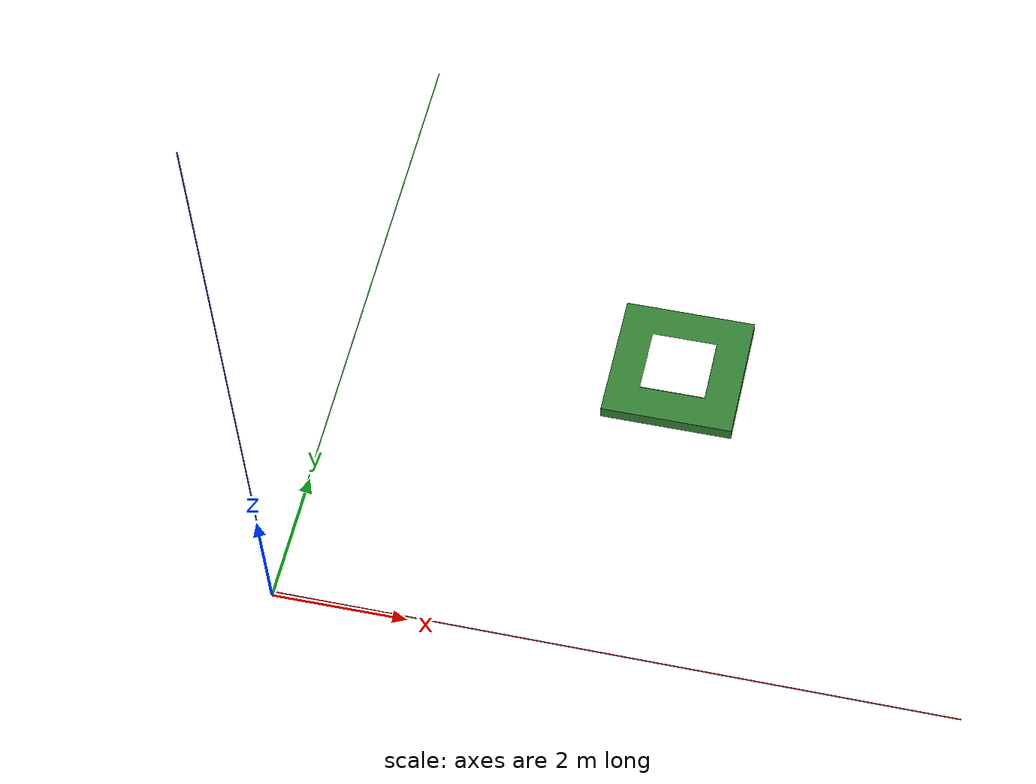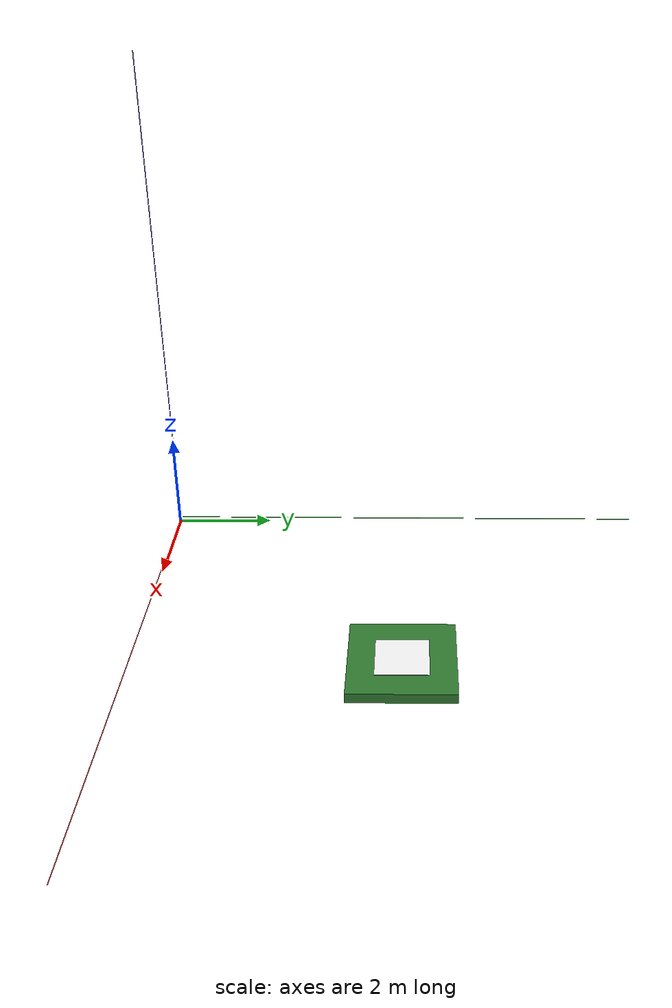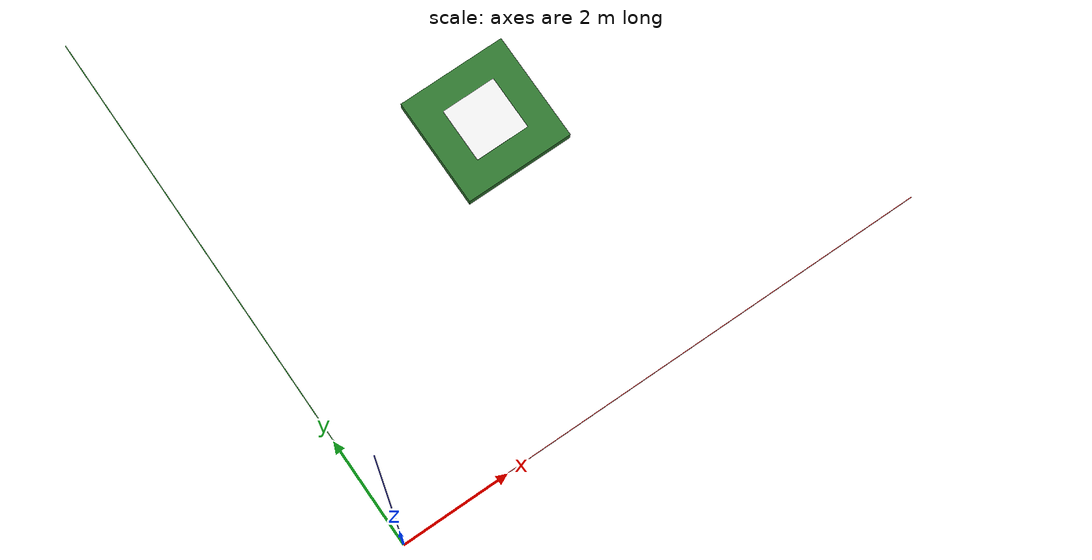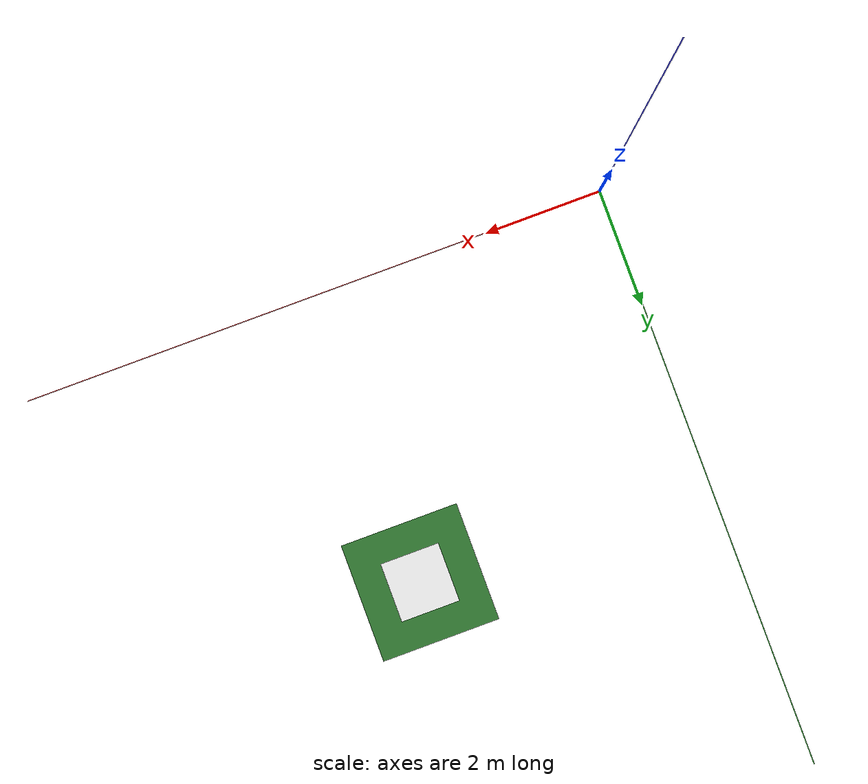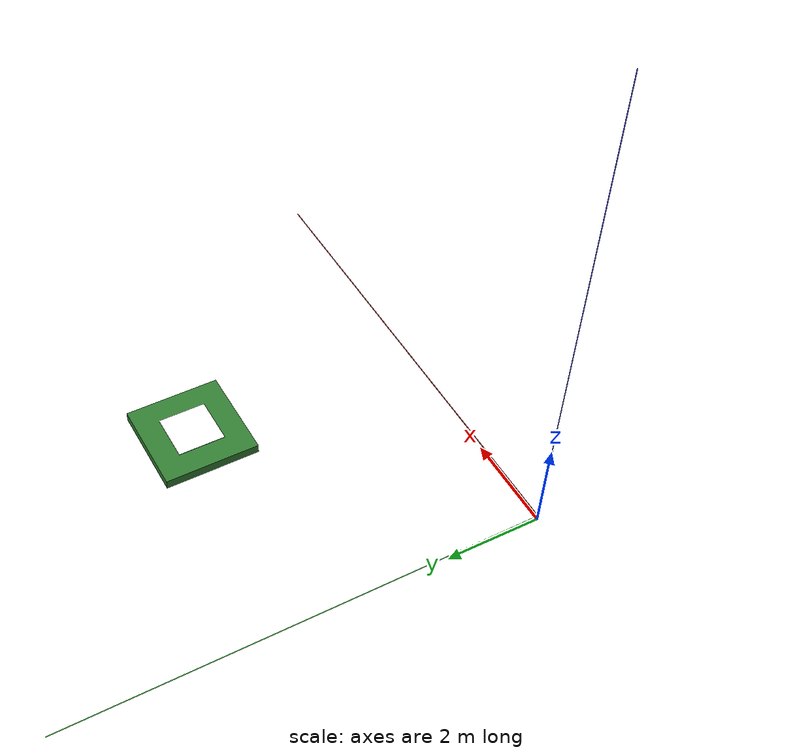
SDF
<sdf version="1.9">
 <world name="iris_runway">
  <physics name="1ms" type="ignore">
   <max_step_size>0.001</max_step_size>
   <real_time_factor>1.0</real_time_factor>
  </physics>
  <plugin filename="gz-sim-physics-system" name="gz::sim::systems::Physics"/>
  <plugin filename="gz-sim-sensors-system" name="gz::sim::systems::Sensors">
   <render_engine>ogre2</render_engine>
  </plugin>
  <plugin filename="gz-sim-user-commands-system" name="gz::sim::systems::UserCommands"/>
  <plugin filename="gz-sim-scene-broadcaster-system" name="gz::sim::systems::SceneBroadcaster"/>
  <plugin filename="gz-sim-imu-system" name="gz::sim::systems::Imu"/>
  <plugin filename="gz-sim-navsat-system" name="gz::sim::systems::NavSat"/>
  <scene><ambient>1.0 1.0 1.0</ambient><background>0.8 0.8 0.8</background></scene>
  <spherical_coordinates>
   <latitude_deg>-35.363262</latitude_deg>
   <longitude_deg>149.165237</longitude_deg>
   <elevation>584</elevation>
   <heading_deg>0</heading_deg>
   <surface_model>EARTH_WGS84</surface_model>
  </spherical_coordinates>
  <light type="directional" name="sun">
   <pose>0 0 10 0 0 0</pose>
   <diffuse>0.8 0.8 0.8 1</diffuse>
   <specular>0.8 0.8 0.8 1</specular>
   <attenuation>
    <range>1000</range>
    <constant>0.9</constant>
    <linear>0.01</linear>
    <quadratic>0.001</quadratic>
   </attenuation>
   <direction>-0.5 0.1 -0.9</direction>
  </light>
  <model name="axes">
   <static>1</static>
   <link name="link">
    <visual name="r">
     <cast_shadows>0</cast_shadows>
     <pose>5 0 0.1 0 0 0</pose>
     <geometry><box><size>10 0.01 0.01</size></box></geometry>
     <material>
      <ambient>1 0 0 0.8</ambient>
      <diffuse>1 0 0 0.8</diffuse>
      <emissive>1 0 0 0.8</emissive>
      <specular>0.5 0.5 0.5 0.8</specular>
     </material>
    </visual>
    <visual name="g">
     <cast_shadows>0</cast_shadows>
     <pose>0 5 0.1 0 0 0</pose>
     <geometry><box><size>0.01 10 0.01</size></box></geometry>
     <material>
      <ambient>0 1 0 0.8</ambient>
      <diffuse>0 1 0 0.8</diffuse>
      <emissive>0 1 0 0.8</emissive>
      <specular>0.5 0.5 0.5 0.8</specular>
     </material>
    </visual>
    <visual name="b">
     <cast_shadows>0</cast_shadows>
     <pose>0 0 5.1 0 0 0</pose>
     <geometry><box><size>0.01 0.01 10</size></box></geometry>
     <material>
      <ambient>0 0 1 0.8</ambient>
      <diffuse>0 0 1 0.8</diffuse>
      <emissive>0 0 1 0.8</emissive>
      <specular>0.5 0.5 0.5 0.8</specular>
     </material>
    </visual>
    <sensor name="navsat_sensor" type="navsat"><always_on>1</always_on><update_rate>1</update_rate></sensor>
   </link>
  </model>
  <model name="landing_platform">
   <pose>5 5 0.1 0 0 0</pose>
   <link name="base_link">
    <kinematic>true</kinematic>
    <collision name="collision"><geometry><box><size>2 2 0.2</size></box></geometry></collision>
    <visual name="visual">
     <geometry><box><size>2 2 0.2</size></box></geometry>
     <material><ambient>0.2 0.5 0.2 1</ambient><diffuse>0.2 0.5 0.2 1</diffuse></material>
    </visual>
    <visual name="marker_visual">
     <pose>0 0 0.11 0 0 0</pose>
     <geometry><box><size>1.0 1.0 0.01</size></box></geometry>
     <material>
      <diffuse>1 1 1 1</diffuse>
      <pbr><metal><albedo_map>model://iris_with_aruco/materials/textures/marker.png</albedo_map></metal></pbr>
     </material>
    </visual>
   </link>
   <plugin filename="gz-sim-trajectory-follower-system" name="gz::sim::systems::TrajectoryFollower">
    <link_name>base_link</link_name>
    <loop>true</loop>
    <waypoints>
     <waypoint><time>0.0</time><pose>5 5 0.1 0 0 0</pose></waypoint>
     <waypoint><time>10.0</time><pose>25 5 0.1 0 0 0</pose></waypoint>
     <waypoint><time>20.0</time><pose>25 25 0.1 0 0 0</pose></waypoint>
     <waypoint><time>30.0</time><pose>5 25 0.1 0 0 0</pose></waypoint>
     <waypoint><time>40.0</time><pose>5 5 0.1 0 0 0</pose></waypoint>
    </waypoints>
   </plugin>
  </model>
 </world>
</sdf>
